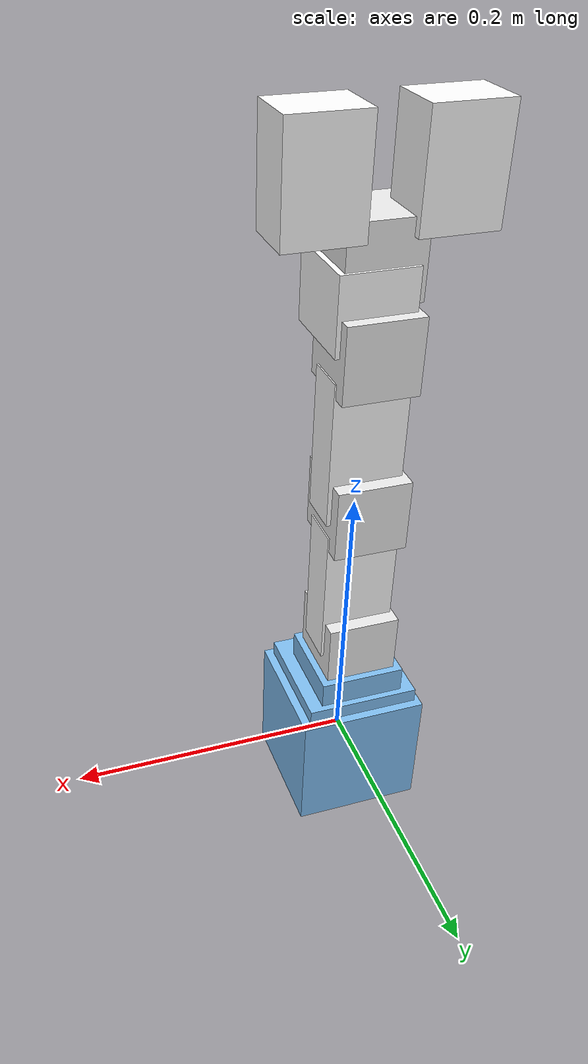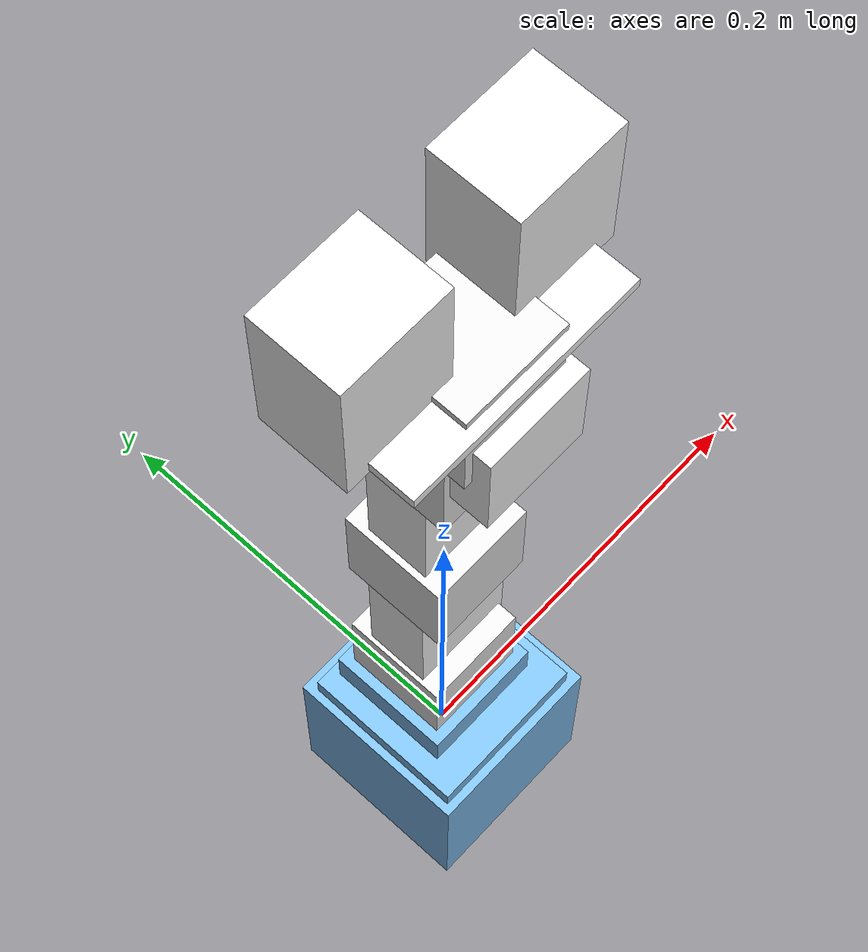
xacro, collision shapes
<?xml version="1.0"?>

<robot name="arm" xmlns:xacro="http://www.ros.org/wiki/xacro">

  <xacro:arg name="hardware_interface" default="PositionJointInterface"/>
  <xacro:arg name="robot_name" default="arm"/>
  <xacro:arg name="origin_xyz" default="0 0 0"/>
  <xacro:arg name="origin_rpy" default="0 0 0"/>

  <xacro:include filename="$(find arm_description)/urdf/arm.gazebo.xacro" />
  <xacro:include filename="$(find arm_description)/urdf/arm.transmission.xacro" />
  <xacro:include filename="$(find arm_description)/urdf/camera.urdf.xacro" />

<link name="base_link">
    <visual>
      <geometry>
        <mesh filename="package://arm_description/meshes/base_link.stl" scale="0.001 0.001 0.001"/>
      </geometry>
      <origin rpy="0 0 0" xyz="0 0 0"/>
    </visual>
    <collision>
      <geometry>
        <box size="0.09 0.09 0.09"/>
      </geometry>
      <origin rpy="0 0 0" xyz="0 0 0"/>
    </collision>
    <inertial>
      <mass value="0.1"/>
      <inertia ixx="1.06682889e+08" ixy="0.0" ixz="0.0" iyy="9.92165844e+07" iyz="0.0" izz="1.26939175e+08"/>
    </inertial>
  </link>

  <joint name="camera_joint" type="fixed">
    <parent link="base_link"/>
    <child link="camera_link"/>
    <origin xyz="0.75 0 0.5" rpy="0 0.3 -3.14"/>
  </joint>

  <link name="camera_link">
    <visual>
        <geometry>
            <box size="0.05 0.05 0.05"/>
        </geometry>
    </visual>
  </link>

  <joint name="base_1_2" type="fixed">
    <parent link="base_link"/>
    <child link="base_turn"/>
    <origin xyz="-0.0011 -0.011 0.05"/>
  </joint>

  <link name="base_turn">
    <visual>
      <geometry>
        <mesh filename="package://arm_description/meshes/base_turn.stl" scale="0.001 0.001 0.001"/>
      </geometry>
      <origin rpy="0 0 0" xyz="0 0 0"/>
    </visual>
    <collision>
      <geometry>
          <box size="0.08 0.08 0.01"/>
        </geometry>
      <origin rpy="0 0 0" xyz="0 0.01 0"/>
    </collision>
    <inertial>
      <mass value="0.1"/>
      <inertia ixx="1.35223008e+07" ixy="0.0" ixz="0.0" iyy="8.13814925e+06" iyz="0.0" izz="2.14903814e+07"/>
    </inertial>
  </link>

  <joint name="j0" type="revolute">
    <parent link="base_turn"/>
    <child link="base_turn_rot"/>
    <origin xyz="-0.0 0.0155 0.013" rpy = "0 0 -1.57"/>
    <axis xyz="0 0 1" />
    <limit effort="300" velocity="0.1" lower="-2.57" upper="2.57"/>
  </joint>

  <link name="base_turn_rot">
    <visual>
      <geometry>
        <mesh filename="package://arm_description/meshes/base_turn_table_rot.stl" scale="0.001 0.001 0.001"/>
      </geometry>

    </visual>
    <collision>
      <geometry>
          <box size="0.06 0.06 0.021"/>
        </geometry>
      <origin rpy="0 0 0" xyz="0 0 0"/>
    </collision>

    <inertial>
      <mass value="0.1"/>
      <inertia ixx="3.41992001e+06" ixy="0.0" ixz="0.0" iyy="2.85587836e+06" iyz="0.0" izz="5.84313870e+06"/>
    </inertial>
  </link>

  <joint name="base_turn_rot_dyn2" type="fixed">
    <parent link="base_turn_rot"/>
    <child link="dyn2"/>
    <origin xyz="0 0 0.0385" rpy="0 1.57 1.57 "/>
  </joint>

  <link name="dyn2">
    <visual>
      <geometry>
        <mesh filename="package://arm_description/meshes/dyn.stl" scale="0.01 0.01 0.01"/>
      </geometry>

      <origin rpy="0 0 0" xyz="0 0 0"/>
    </visual>
    <collision>
      <geometry>
          <box size="0.05 0.05 0.05"/>
        </geometry>
      <origin rpy="0 0 0" xyz="0.01 0 0"/>
    </collision>
     <inertial>
      <mass value="0.1"/>
      <inertia ixx="6.90013881e+01" ixy="0.0" ixz="0.0" iyy="1.24554875e+02" iyz="0.0" izz="1.04295793e+02"/>
    </inertial>
  </link>

  <joint name="j1" type="revolute">
    <parent link="dyn2"/>
    <child link="dyn2_r"/>
    <origin xyz="0 0 0.0" rpy="0 0 0"/>
    <axis xyz="0 0 1" />
    <limit effort="300" velocity="0.1" lower="-3.14" upper="3.14"/>
  </joint>

  <link name="dyn2_r">

  </link>

  <joint name="dyn2_f4" type="fixed">
    <parent link="dyn2_r"/>
    <child link="f4"/>
    <origin xyz="-0.047 0.0 -0.003" rpy="0 1.57 1.57"/>
  </joint>

  <link name="f4">
    <visual>
      <geometry>
        <mesh filename="package://arm_description/meshes/f4_n_f3.stl" scale="0.001 0.001 0.001"/>
      </geometry>
      <origin rpy="0 0 0" xyz="0 0 0"/>
      <material name="white">
        <color rgba="1 1 1 1"/>
      </material>
    </visual>
    <collision>
      <geometry>
          <box size="0.05 0.1 0.03"/>
        </geometry>
      <origin rpy="0 0 0" xyz="-0.005 -0.01 0"/>
    </collision>
     <inertial>
      <mass value="0.1"/>
      <inertia ixx="6.90013881e+01" ixy="0.0" ixz="0.0" iyy="1.24554875e+02" iyz="0.0" izz="1.04295793e+02"/>
    </inertial>
  </link>

  <joint name="d4_dyn3" type="fixed">
    <parent link="f4"/>
    <child link="dyn3"/>
    <origin xyz="-0.004 0.0645 0 " rpy="-1.57 3.14 1.57"/>
  </joint>

  <link name="dyn3">
    <visual>
      <geometry>
        <mesh filename="package://arm_description/meshes/dyn.stl" scale="0.01 0.01 0.01"/>
      </geometry>
      <origin rpy="0 0 0" xyz="0 0 0"/>
    </visual>
    <collision>
      <geometry>
          <box size="0.05 0.05 0.05"/>
        </geometry>
      <origin rpy="0 0 0" xyz="0.01 0 0"/>
    </collision>
     <inertial>
      <mass value="0.1"/>
      <inertia ixx="6.90013881e+01" ixy="0.0" ixz="0.0" iyy="1.24554875e+02" iyz="0.0" izz="1.04295793e+02"/>
    </inertial>
  </link>

  <joint name="j2" type="revolute">
    <parent link="dyn3"/>
    <child link="dyn3_r"/>
    <origin xyz="0 0 0.0" rpy="0 0 0"/>
    <axis xyz="0 0 1" />
    <limit effort="300" velocity="0.1" lower="-3.14" upper="3.14"/>
  </joint>

  <link name="dyn3_r">

  </link>

  <joint name="dyn3_f5" type="fixed">
    <parent link="dyn3_r"/>
    <child link="f5"/>
    <origin xyz="-0.046 -0.0 -0.002" rpy="1.57 1.57 3.1415 "/>
  </joint>

  <link name="f5">
    <visual>
      <geometry>
        <mesh filename="package://arm_description/meshes/f4_n_f3.stl" scale="0.001 0.001 0.001"/>
      </geometry>
      <origin rpy="0 0 0" xyz="0 0 0"/>
      <material name="white">
        <color rgba="1 1 1 1"/>
      </material>
    </visual>
    <collision>
      <geometry>
          <box size="0.05 0.1 0.03"/>
        </geometry>
      <origin rpy="0 0 0" xyz="-0.005 -0.01 0"/>
    </collision>

    <inertial>
      <mass value="0.1"/>
      <inertia ixx="1.13130695e+07" ixy="0.0" ixz="0.0" iyy="8.78052401e+06" iyz="0.0" izz="1.72940286e+07"/>
    </inertial>
  </link>

  <joint name="f5_dyn4" type="fixed">
    <parent link="f5"/>
    <child link="dyn4"/>
    <origin xyz="-0.004 0.065 -0.0" rpy="-1.57 3.1415 1.57 "/>
  </joint>

  <link name="dyn4">
    <visual>
      <geometry>
        <mesh filename="package://arm_description/meshes/dyn.stl" scale="0.01 0.01 0.01"/>
      </geometry>

      <origin rpy="0 0 0" xyz="0 0 0"/>
    </visual>
    <collision>
      <geometry>
          <box size="0.05 0.05 0.05"/>
        </geometry>
      <origin rpy="0 0 0" xyz="0.01 0 0"/>
    </collision>

    <inertial>
      <mass value="0.1"/>
      <inertia ixx="6.90013881e+01" ixy="0.0" ixz="0.0" iyy="1.24554875e+02" iyz="0.0" izz="1.04295793e+02"/>
    </inertial>
  </link>

  <joint name="j3" type="revolute">
    <parent link="dyn4"/>
    <child link="dyn4_r"/>
    <origin xyz="0 0 0.0" rpy="0 0 0"/>
    <axis xyz="0 0 1" />
    <limit effort="300" velocity="0.1" lower="-3.14" upper="3.14"/>
  </joint>

  <link name="dyn4_r">

  </link>

  <joint name="f5_wrist" type="fixed">
    <parent link="dyn4_r"/>
    <child link="wrist"/>
    <origin xyz="-0.017 -0.013 0.003" rpy="1.57 1.57 -1.57"/>
  </joint>

  <link name="wrist">
    <visual>
      <geometry>
        <mesh filename="package://arm_description/meshes/wrist.stl" scale="0.001 0.001 0.001"/>
      </geometry>
      <origin rpy="0 0 0" xyz="0 0 0"/>
      <material name="white">
        <color rgba="1 1 1 1"/>
      </material>
    </visual>
    <collision>
      <geometry>
        <box size="0.05 0.06 0.05"/>
      </geometry>
      <origin rpy="0 0 0" xyz="0 0 0"/>
    </collision>

     <inertial>
      <mass value="0.1"/>
      <inertia ixx="6.90013881e+01" ixy="0.0" ixz="0.0" iyy="1.24554875e+02" iyz="0.0" izz="1.04295793e+02"/>
    </inertial>
  </link>

  <joint name="wrist_dyn5" type="fixed">
    <parent link="wrist"/>
    <child link="dyn5"/>
    <origin xyz="0.0038 -0.013 0.0275" rpy="0 0 1.57"/>
  </joint>

    <link name="dyn5">
    <visual>
      <geometry>
        <mesh filename="package://arm_description/meshes/dyn.stl" scale="0.01 0.01 0.01"/>
      </geometry>
      <origin rpy="0 0 0" xyz="0 0 0"/>
    </visual>
    <collision>
      <geometry>
          <box size="0.05 0.05 0.05"/>
        </geometry>
      <origin rpy="0 0 0" xyz="0.01 0 0"/>
    </collision>

    <inertial>
      <mass value="0.1"/>
      <inertia ixx="6.90013881e+01" ixy="0.0" ixz="0.0" iyy="1.24554875e+02" iyz="0.0" izz="1.04295793e+02"/>
    </inertial>
  </link>

  <joint name="dyn5_dyn5_r" type="fixed">
    <parent link="dyn5"/>
    <child link="dyn5_r"/>
    <origin xyz="0 0 0.0" rpy="0 0 0"/>
    <axis xyz="0 0 1" />
    <limit effort="300" velocity="0.1" lower="-3.14" upper="3.14"/>
  </joint>

  <link name="dyn5_r">

  </link>

  <joint name="wrist_rotate_dyn5" type="fixed">
    <parent link="dyn5_r"/>
    <child link="crawer_base"/>
    <origin xyz="0.015 0 0.019" rpy="0 0 1.57"/>
  </joint>

  <link name="crawer_base">
    <visual>
      <geometry>
        <mesh filename="package://arm_description/meshes/the_crawer_base.stl" scale="0.001 0.001 0.001"/>
      </geometry>
      <origin rpy="0 0 0" xyz="0 0 0"/>
      <material name="white">
        <color rgba="1 1 1 1"/>
      </material>
    </visual>
    <collision>
      <geometry>
          <box size="0.11 0.05 0.005"/>
        </geometry>
      <origin rpy="0 0 0" xyz="0 0 0"/>
    </collision>

    <inertial>
      <mass value="0.1"/>
      <inertia ixx="6.90013881e+01" ixy="0.0" ixz="0.0" iyy="1.24554875e+02" iyz="0.0" izz="1.04295793e+02"/>
    </inertial>
  </link>

  <joint name="crawer_base_crawer_left" type="fixed">
    <parent link="crawer_base"/>
    <child link="crawer_left"/>
    <origin xyz="-0.03 0.015 0.01" rpy="0 -1.57 0"/>
  </joint>

  <link name="crawer_left">
    <visual>
      <geometry>
        <mesh filename="package://arm_description/meshes/the_crawer.stl" scale="0.001 0.001 0.001"/>
      </geometry>
      <origin rpy="0 0 0" xyz="0 0 0"/>
      <material name="white">
        <color rgba="1 1 1 1"/>
      </material>
    </visual>
    <collision>
      <geometry>
          <box size="0.07 0.04 0.05"/>
        </geometry>
      <origin rpy="0 0 0" xyz="0.02 0 0.01"/>
    </collision>

    <inertial>
      <mass value="0.1"/>
      <inertia ixx="6.90013881e+01" ixy="0.0" ixz="0.0" iyy="1.24554875e+02" iyz="0.0" izz="1.04295793e+02"/>
    </inertial>
  </link>

  <joint name="crawer_base_crawer_right" type="fixed">
    <parent link="crawer_base"/>
    <child link="crawer_right"/>
    <origin xyz="0.03 0.015 0.01" rpy="3.1415 -1.57 0"/>
  </joint>

  <link name="crawer_right">
    <visual>
      <geometry>
        <mesh filename="package://arm_description/meshes/the_crawer.stl" scale="0.001 0.001 0.001"/>
      </geometry>
      <origin rpy="0 0 0" xyz="0 0 0"/>
      <material name="white">
        <color rgba="1 1 1 1"/>
      </material>
    </visual>
    <collision>
      <geometry>
          <box size="0.07 0.04 0.05"/>
        </geometry>
      <origin rpy="0 0 0" xyz="0.02 0 0.01"/>
    </collision>

    <inertial>
      <mass value="0.1"/>
      <inertia ixx="6.90013881e+01" ixy="0.0" ixz="0.0" iyy="1.24554875e+02" iyz="0.0" izz="1.04295793e+02"/>
    </inertial>
  </link>

  <xacro:arm_gazebo hardware_interface="$(arg hardware_interface)" robot_name="$(arg robot_name)">
    <origin xyz="$(arg origin_xyz)" rpy="$(arg origin_rpy)" />
  </xacro:arm_gazebo>

 <xacro:arm_transmission hardware_interface="$(arg hardware_interface)" robot_name="$(arg robot_name)">
    <origin xyz="$(arg origin_xyz)" rpy="$(arg origin_rpy)" />
  </xacro:arm_transmission>

</robot>
